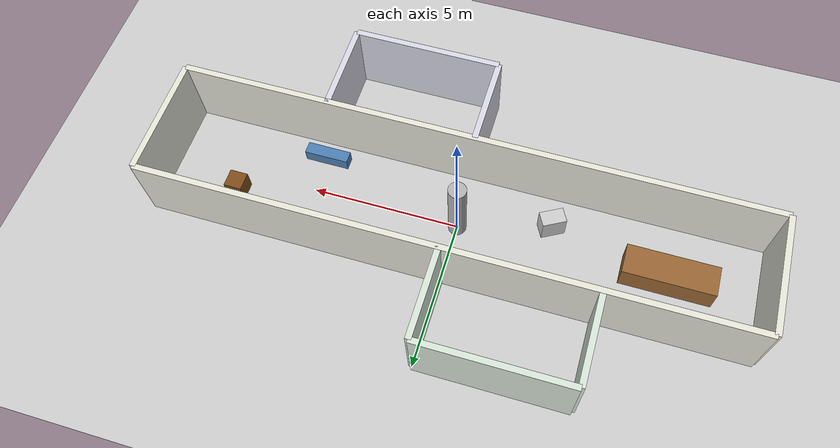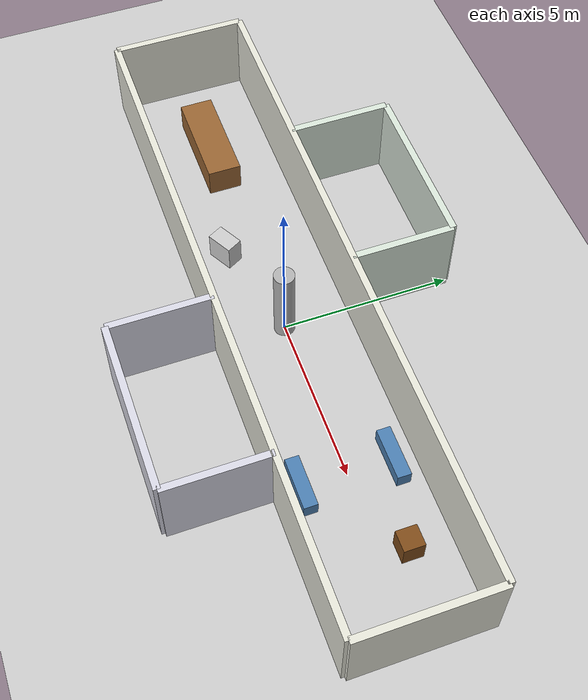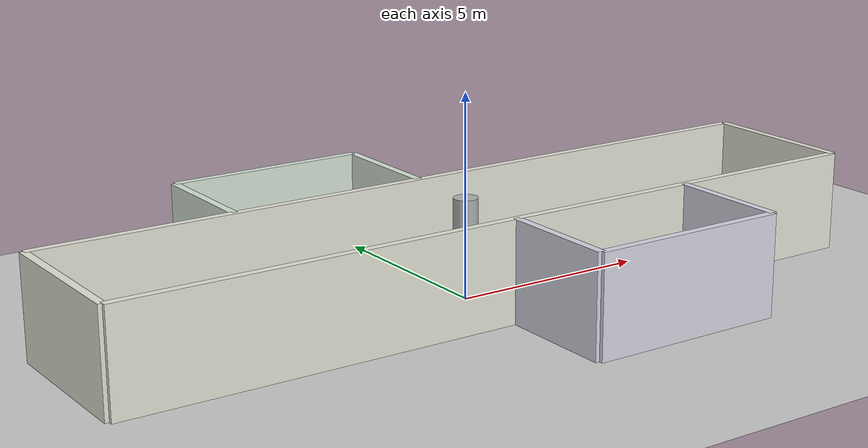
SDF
<?xml version="1.0"?>
<sdf version="1.6">
  <world name="hospital_corridor">

    <!-- Physics -->
    <physics type="ode">
      <max_step_size>0.001</max_step_size>
      <real_time_factor>1</real_time_factor>
      <real_time_update_rate>1000</real_time_update_rate>
    </physics>

    <!-- Lighting -->
    <include>
      <uri>model://sun</uri>
    </include>

    <!-- Ground Plane with High Friction -->
    <model name="ground_plane">
      <static>true</static>
      <link name="link">
        <collision name="collision">
          <geometry>
            <plane>
              <normal>0 0 1</normal>
              <size>100 100</size>
            </plane>
          </geometry>
          <surface>
            <friction>
              <ode>
                <mu>2.5</mu>
                <mu2>2.5</mu2>
                <fdir1>0 0 0</fdir1>
                <slip1>0.0</slip1>
                <slip2>0.0</slip2>
              </ode>
            </friction>
            <contact>
              <ode>
                <kp>1000000.0</kp>
                <kd>100.0</kd>
                <min_depth>0.001</min_depth>
              </ode>
            </contact>
          </surface>
        </collision>
        <visual name="visual">
          <cast_shadows>false</cast_shadows>
          <geometry>
            <plane>
              <normal>0 0 1</normal>
              <size>100 100</size>
            </plane>
          </geometry>
          <material>
            <script>
              <uri>file://media/materials/scripts/gazebo.material</uri>
              <name>Gazebo/Grey</name>
            </script>
          </material>
        </visual>
      </link>
    </model>

    <!-- ========== MAIN CORRIDOR (20m x 4m) ========== -->

    <!-- North Wall (long) -->
    <model name="corridor_north">
      <static>true</static>
      <link name="link">
        <collision name="collision">
          <geometry>
            <box>
              <size>20.0 0.2 2.5</size>
            </box>
          </geometry>
        </collision>
        <visual name="visual">
          <geometry>
            <box>
              <size>20.0 0.2 2.5</size>
            </box>
          </geometry>
          <material>
            <ambient>0.9 0.9 0.85 1</ambient>
            <diffuse>0.9 0.9 0.85 1</diffuse>
          </material>
        </visual>
      </link>
      <pose>0 2.0 1.25 0 0 0</pose>
    </model>

    <!-- South Wall (long) -->
    <model name="corridor_south">
      <static>true</static>
      <link name="link">
        <collision name="collision">
          <geometry>
            <box>
              <size>20.0 0.2 2.5</size>
            </box>
          </geometry>
        </collision>
        <visual name="visual">
          <geometry>
            <box>
              <size>20.0 0.2 2.5</size>
            </box>
          </geometry>
          <material>
            <ambient>0.9 0.9 0.85 1</ambient>
            <diffuse>0.9 0.9 0.85 1</diffuse>
          </material>
        </visual>
      </link>
      <pose>0 -2.0 1.25 0 0 0</pose>
    </model>

    <!-- West Wall (end) -->
    <model name="corridor_west">
      <static>true</static>
      <link name="link">
        <collision name="collision">
          <geometry>
            <box>
              <size>0.2 4.0 2.5</size>
            </box>
          </geometry>
        </collision>
        <visual name="visual">
          <geometry>
            <box>
              <size>0.2 4.0 2.5</size>
            </box>
          </geometry>
          <material>
            <ambient>0.9 0.9 0.85 1</ambient>
            <diffuse>0.9 0.9 0.85 1</diffuse>
          </material>
        </visual>
      </link>
      <pose>-10.0 0 1.25 0 0 0</pose>
    </model>

    <!-- East Wall (end) -->
    <model name="corridor_east">
      <static>true</static>
      <link name="link">
        <collision name="collision">
          <geometry>
            <box>
              <size>0.2 4.0 2.5</size>
            </box>
          </geometry>
        </collision>
        <visual name="visual">
          <geometry>
            <box>
              <size>0.2 4.0 2.5</size>
            </box>
          </geometry>
          <material>
            <ambient>0.9 0.9 0.85 1</ambient>
            <diffuse>0.9 0.9 0.85 1</diffuse>
          </material>
        </visual>
      </link>
      <pose>10.0 0 1.25 0 0 0</pose>
    </model>

    <!-- ========== ROOM 1 (Left side, middle) ========== -->

    <!-- Room 1 - Back wall -->
    <model name="room1_back">
      <static>true</static>
      <link name="link">
        <collision name="collision">
          <geometry>
            <box>
              <size>5.0 0.2 2.5</size>
            </box>
          </geometry>
        </collision>
        <visual name="visual">
          <geometry>
            <box>
              <size>5.0 0.2 2.5</size>
            </box>
          </geometry>
          <material>
            <ambient>0.85 0.9 0.85 1</ambient>
            <diffuse>0.85 0.9 0.85 1</diffuse>
          </material>
        </visual>
      </link>
      <pose>-2.5 5.0 1.25 0 0 0</pose>
    </model>

    <!-- Room 1 - Left wall -->
    <model name="room1_left">
      <static>true</static>
      <link name="link">
        <collision name="collision">
          <geometry>
            <box>
              <size>0.2 3.0 2.5</size>
            </box>
          </geometry>
        </collision>
        <visual name="visual">
          <geometry>
            <box>
              <size>0.2 3.0 2.5</size>
            </box>
          </geometry>
          <material>
            <ambient>0.85 0.9 0.85 1</ambient>
            <diffuse>0.85 0.9 0.85 1</diffuse>
          </material>
        </visual>
      </link>
      <pose>-5.0 3.5 1.25 0 0 0</pose>
    </model>

    <!-- Room 1 - Right wall (with door opening) -->
    <model name="room1_right">
      <static>true</static>
      <link name="link">
        <collision name="collision">
          <geometry>
            <box>
              <size>0.2 3.0 2.5</size>
            </box>
          </geometry>
        </collision>
        <visual name="visual">
          <geometry>
            <box>
              <size>0.2 3.0 2.5</size>
            </box>
          </geometry>
          <material>
            <ambient>0.85 0.9 0.85 1</ambient>
            <diffuse>0.85 0.9 0.85 1</diffuse>
          </material>
        </visual>
      </link>
      <pose>0 3.5 1.25 0 0 0</pose>
    </model>

    <!-- ========== ROOM 2 (Right side, middle) ========== -->

    <!-- Room 2 - Back wall -->
    <model name="room2_back">
      <static>true</static>
      <link name="link">
        <collision name="collision">
          <geometry>
            <box>
              <size>5.0 0.2 2.5</size>
            </box>
          </geometry>
        </collision>
        <visual name="visual">
          <geometry>
            <box>
              <size>5.0 0.2 2.5</size>
            </box>
          </geometry>
          <material>
            <ambient>0.85 0.85 0.9 1</ambient>
            <diffuse>0.85 0.85 0.9 1</diffuse>
          </material>
        </visual>
      </link>
      <pose>2.5 -5.0 1.25 0 0 0</pose>
    </model>

    <!-- Room 2 - Left wall -->
    <model name="room2_left">
      <static>true</static>
      <link name="link">
        <collision name="collision">
          <geometry>
            <box>
              <size>0.2 3.0 2.5</size>
            </box>
          </geometry>
        </collision>
        <visual name="visual">
          <geometry>
            <box>
              <size>0.2 3.0 2.5</size>
            </box>
          </geometry>
          <material>
            <ambient>0.85 0.85 0.9 1</ambient>
            <diffuse>0.85 0.85 0.9 1</diffuse>
          </material>
        </visual>
      </link>
      <pose>0 -3.5 1.25 0 0 0</pose>
    </model>

    <!-- Room 2 - Right wall -->
    <model name="room2_right">
      <static>true</static>
      <link name="link">
        <collision name="collision">
          <geometry>
            <box>
              <size>0.2 3.0 2.5</size>
            </box>
          </geometry>
        </collision>
        <visual name="visual">
          <geometry>
            <box>
              <size>0.2 3.0 2.5</size>
            </box>
          </geometry>
          <material>
            <ambient>0.85 0.85 0.9 1</ambient>
            <diffuse>0.85 0.85 0.9 1</diffuse>
          </material>
        </visual>
      </link>
      <pose>5.0 -3.5 1.25 0 0 0</pose>
    </model>

    <!-- ========== OBSTACLES (furniture simulation) ========== -->

    <!-- Reception desk (large) -->
    <model name="reception_desk">
      <static>true</static>
      <link name="link">
        <collision name="collision">
          <geometry>
            <box>
              <size>3.0 1.0 0.9</size>
            </box>
          </geometry>
        </collision>
        <visual name="visual">
          <geometry>
            <box>
              <size>3.0 1.0 0.9</size>
            </box>
          </geometry>
          <material>
            <ambient>0.6 0.4 0.2 1</ambient>
            <diffuse>0.6 0.4 0.2 1</diffuse>
          </material>
        </visual>
      </link>
      <pose>-7.0 0 0.45 0 0 0</pose>
    </model>

    <!-- Bench 1 -->
    <model name="bench1">
      <static>true</static>
      <link name="link">
        <collision name="collision">
          <geometry>
            <box>
              <size>1.5 0.4 0.45</size>
            </box>
          </geometry>
        </collision>
        <visual name="visual">
          <geometry>
            <box>
              <size>1.5 0.4 0.45</size>
            </box>
          </geometry>
          <material>
            <ambient>0.3 0.5 0.7 1</ambient>
            <diffuse>0.3 0.5 0.7 1</diffuse>
          </material>
        </visual>
      </link>
      <pose>5.0 1.3 0.225 0 0 0</pose>
    </model>

    <!-- Bench 2 -->
    <model name="bench2">
      <static>true</static>
      <link name="link">
        <collision name="collision">
          <geometry>
            <box>
              <size>1.5 0.4 0.45</size>
            </box>
          </geometry>
        </collision>
        <visual name="visual">
          <geometry>
            <box>
              <size>1.5 0.4 0.45</size>
            </box>
          </geometry>
          <material>
            <ambient>0.3 0.5 0.7 1</ambient>
            <diffuse>0.3 0.5 0.7 1</diffuse>
          </material>
        </visual>
      </link>
      <pose>5.0 -1.3 0.225 0 0 0</pose>
    </model>

    <!-- Equipment cart (medical cart simulation) -->
    <model name="cart1">
      <static>true</static>
      <link name="link">
        <collision name="collision">
          <geometry>
            <box>
              <size>0.8 0.5 0.85</size>
            </box>
          </geometry>
        </collision>
        <visual name="visual">
          <geometry>
            <box>
              <size>0.8 0.5 0.85</size>
            </box>
          </geometry>
          <material>
            <ambient>0.8 0.8 0.8 1</ambient>
            <diffuse>0.8 0.8 0.8 1</diffuse>
          </material>
        </visual>
      </link>
      <pose>-3.0 -0.8 0.425 0 0 0.5</pose>
    </model>

    <!-- Small table -->
    <model name="table1">
      <static>true</static>
      <link name="link">
        <collision name="collision">
          <geometry>
            <box>
              <size>0.6 0.6 0.7</size>
            </box>
          </geometry>
        </collision>
        <visual name="visual">
          <geometry>
            <box>
              <size>0.6 0.6 0.7</size>
            </box>
          </geometry>
          <material>
            <ambient>0.5 0.3 0.1 1</ambient>
            <diffuse>0.5 0.3 0.1 1</diffuse>
          </material>
        </visual>
      </link>
      <pose>7.5 0.7 0.35 0 0 0</pose>
    </model>

    <!-- Pillar/Column (structural element) -->
    <model name="pillar1">
      <static>true</static>
      <link name="link">
        <collision name="collision">
          <geometry>
            <cylinder>
              <radius>0.3</radius>
              <length>2.5</length>
            </cylinder>
          </geometry>
        </collision>
        <visual name="visual">
          <geometry>
            <cylinder>
              <radius>0.3</radius>
              <length>2.5</length>
            </cylinder>
          </geometry>
          <material>
            <ambient>0.7 0.7 0.7 1</ambient>
            <diffuse>0.7 0.7 0.7 1</diffuse>
          </material>
        </visual>
      </link>
      <pose>0 0 1.25 0 0 0</pose>
    </model>

  </world>
</sdf>
